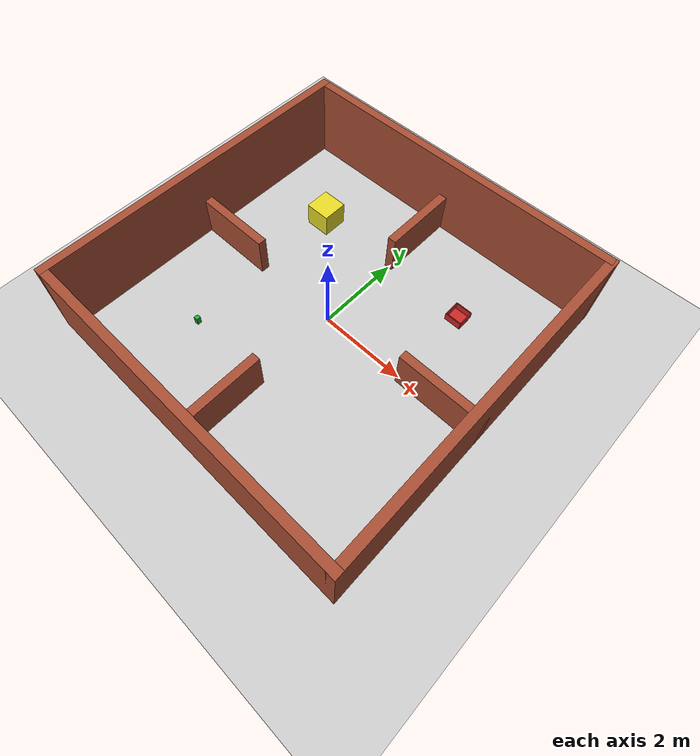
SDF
<sdf version="1.4">
  <world name="room_whd2">

    <!-- Global world -->
    <include>
      <uri>model://ground_plane</uri>
    </include>

    <!-- Global light source -->
    <include>
      <uri>model://sun</uri>
    </include>

    <physics type="ode">
      <real_time_update_rate>1000.0</real_time_update_rate>
      <max_step_size>0.001</max_step_size>
      <real_time_factor>1</real_time_factor>
      <ode>
        <solver>
          <type>quick</type>
          <iters>150</iters>
          <precon_iters>0</precon_iters>
          <sor>1.400000</sor>
          <use_dynamic_moi_rescaling>1</use_dynamic_moi_rescaling>
        </solver>
        <constraints>
          <cfm>0.00001</cfm>
          <erp>0.2</erp>
          <contact_max_correcting_vel>2000.000000</contact_max_correcting_vel>
          <contact_surface_layer>0.01000</contact_surface_layer>
        </constraints>
      </ode>
    </physics>

    <!-- Load world -->

    <include>
      <uri>model://room_whd2</uri>
    </include>

    <scene>
      <ambient>0.4 0.4 0.4 1</ambient>
      <background>0.7 0.7 0.7 1</background>
      <shadows>true</shadows>
    </scene>

    <gui fullscreen='0'>
      <camera name='user_camera'>
        <pose>0.8 2.0 12.0 0 1.5708 1.5708</pose>
        <view_controller>orbit</view_controller>
      </camera>
    </gui>
  </world>
</sdf>

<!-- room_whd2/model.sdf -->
<sdf version='1.6'>
  <model name='room_whd2'>
    <static>1</static>
    <pose frame=''>0 0 0 0 0 0</pose>
    <link name='Wall_0'>
      <collision name='Wall_0_Collision'>
        <geometry>
          <box>
            <size>8 0.2 2</size>
          </box>
        </geometry>
      </collision>
      <visual name='Wall_0_Visual'>
        <geometry>
          <box>
            <size>8 0.2 2</size>
          </box>
        </geometry>
        <material>
          <script>
            <uri>file://media/materials/scripts/gazebo.material</uri>
            <name>Gazebo/Bricks</name>
          </script>
          <ambient>1 1 1 1</ambient>
        </material>
      </visual>
      <pose frame=''>0 3.9 1 0 0 0</pose>
    </link>
    <link name='Wall_1'>
      <collision name='Wall_1_Collision'>
        <geometry>
          <box>
            <size>8 0.2 2</size>
          </box>
        </geometry>
      </collision>
      <visual name='Wall_1_Visual'>
        <geometry>
          <box>
            <size>8 0.2 2</size>
          </box>
        </geometry>
        <material>
          <script>
            <uri>file://media/materials/scripts/gazebo.material</uri>
            <name>Gazebo/Bricks</name>
          </script>
          <ambient>1 1 1 1</ambient>
        </material>
      </visual>
      <pose frame=''>-3.9 0 1 0 0 1.5708</pose>
    </link>
    <link name='Wall_2'>
      <collision name='Wall_2_Collision'>
        <geometry>
          <box>
            <size>8 0.2 2</size>
          </box>
        </geometry>
      </collision>
      <visual name='Wall_2_Visual'>
        <geometry>
          <box>
            <size>8 0.2 2</size>
          </box>
        </geometry>
        <material>
          <script>
            <uri>file://media/materials/scripts/gazebo.material</uri>
            <name>Gazebo/Bricks</name>
          </script>
          <ambient>1 1 1 1</ambient>
        </material>
      </visual>
      <pose frame=''>0 -3.9 1 0 0 0</pose>
    </link>
    <link name='Wall_3'>
      <collision name='Wall_3_Collision'>
        <geometry>
          <box>
            <size>8 0.2 2</size>
          </box>
        </geometry>
      </collision>
      <visual name='Wall_3_Visual'>
        <geometry>
          <box>
            <size>8 0.2 2</size>
          </box>
        </geometry>
        <material>
          <script>
            <uri>file://media/materials/scripts/gazebo.material</uri>
            <name>Gazebo/Bricks</name>
          </script>
          <ambient>1 1 1 1</ambient>
        </material>
      </visual>
      <pose frame=''>3.9 0 1 0 0 1.5708</pose>
    </link>

    <link name='Wall_4'>
      <collision name='Wall_4_Collision'>
        <geometry>
          <box>
            <size>2 0.2 1</size>
          </box>
        </geometry>
      </collision>
      <visual name='Wall_4_Visual'>
        <geometry>
          <box>
            <size>2 0.2 1</size>
          </box>
        </geometry>
        <material>
          <script>
            <uri>file://media/materials/scripts/gazebo.material</uri>
            <name>Gazebo/Bricks</name>
          </script>
          <ambient>1 1 1 1</ambient>
        </material>
      </visual>
      <pose frame=''>0 3 0.5 0 0 1.5708</pose>
    </link>

    <link name='Wall_5'>
      <collision name='Wall_5_Collision'>
        <geometry>
          <box>
            <size>2 0.2 1</size>
          </box>
        </geometry>
      </collision>
      <visual name='Wall_5_Visual'>
        <geometry>
          <box>
            <size>2 0.2 1</size>
          </box>
        </geometry>
        <material>
          <script>
            <uri>file://media/materials/scripts/gazebo.material</uri>
            <name>Gazebo/Bricks</name>
          </script>
          <ambient>1 1 1 1</ambient>
        </material>
      </visual>
      <pose frame=''>3 0 0.5 0 0 0</pose>
    </link>

    <link name='Wall_6'>
      <collision name='Wall_6_Collision'>
        <geometry>
          <box>
            <size>2 0.2 1</size>
          </box>
        </geometry>
      </collision>
      <visual name='Wall_6_Visual'>
        <geometry>
          <box>
            <size>2 0.2 1</size>
          </box>
        </geometry>
        <material>
          <script>
            <uri>file://media/materials/scripts/gazebo.material</uri>
            <name>Gazebo/Bricks</name>
          </script>
          <ambient>1 1 1 1</ambient>
        </material>
      </visual>
      <pose frame=''>0 -3 0.5 0 0 1.5708</pose>
    </link>

    <link name='Wall_7'>
      <collision name='Wall_7_Collision'>
        <geometry>
          <box>
            <size>2 0.2 1</size>
          </box>
        </geometry>
      </collision>
      <visual name='Wall_7_Visual'>
        <geometry>
          <box>
            <size>2 0.2 1</size>
          </box>
        </geometry>
        <material>
          <script>
            <uri>file://media/materials/scripts/gazebo.material</uri>
            <name>Gazebo/Bricks</name>
          </script>
          <ambient>1 1 1 1</ambient>
        </material>
      </visual>
      <pose frame=''>-3 0 0.5 0 0 0</pose>
    </link>

    <link name='Obstacle_1'>
      <collision name='Obstacle_1_Collision'>
        <pose>0 0 0.1 0 0 0</pose>
        <geometry>
          <box>
            <size>0.2 0.2 0.2</size>
          </box>
        </geometry>
        <max_contacts>10</max_contacts>
        <surface>
          <bounce/>
          <friction>
            <ode/>
          </friction>
          <contact>
            <ode/>
          </contact>
        </surface>
      </collision>
      <visual name='Obstacle_1_Visual'>
        <pose>0 0 0.1 0 0 0</pose>
        <geometry>
          <box>
            <size>0.1 0.1 0.2</size>
          </box>
        </geometry>
        <material>
          <script>
            <uri>file://media/materials/scripts/gazebo.material</uri>
            <name>Gazebo/Green</name>
          </script>
        </material>
      </visual>
      <pose frame=''>-2 -2 0 0 0 0</pose>
    </link>

    <link name='Obstacle_2'>
      <collision name='Obstacle_2_Collision'>
        <pose>0 0 0.3 0 0 0</pose>
        <geometry>
          <box>
            <size>0.6 0.6 0.6</size>
          </box>
        </geometry>
        <max_contacts>10</max_contacts>
        <surface>
          <bounce/>
          <friction>
            <ode/>
          </friction>
          <contact>
            <ode/>
          </contact>
        </surface>
      </collision>
      <visual name='Obstacle_2_Visual'>
        <pose>0 0 0.3 0 0 0</pose>
        <geometry>
          <box>
            <size>0.6 0.6 0.6</size>
          </box>
        </geometry>
        <material>
          <script>
            <uri>file://media/materials/scripts/gazebo.material</uri>
            <name>Gazebo/Yellow</name>
          </script>
        </material>
      </visual>
      <pose frame=''>-2 2 0 0 0 0</pose>
    </link>

    <model name='Box_target'>
      <static>1</static>
      <link name='box_bottom_plate'>
        <inertial>
          <pose frame=''>0 0 -1 0 -0 0</pose>
          <inertia>
            <ixx>2.05</ixx>
            <ixy>0</ixy>
            <ixz>0</ixz>
            <iyy>2.05</iyy>
            <iyz>0</iyz>
            <izz>2.05</izz>
          </inertia>
          <mass>25</mass>
        </inertial>
        <collision name='box_bottom_plate_geom'>
          <pose frame=''>0 0 0.01 0 -0 0</pose>
          <geometry>
            <box>
              <size>0.4 0.4 0.02</size>
            </box>
          </geometry>
        </collision>
        <visual name='box_bottom_plate_geom_visual'>
          <pose frame=''>0 0 0.01 0 -0 0</pose>
          <geometry>
            <box>
              <size>0.4 0.4 0.02</size>
            </box>
          </geometry>
          <material>
            <script>
              <uri>file://media/materials/scripts/gazebo.material</uri>
              <name>Gazebo/Red</name>
            </script>
          </material>
        </visual>
        <collision name='box_board_1_geom'>
          <pose frame=''>0 0.19 0.1 0 0 0</pose>
          <geometry>
            <box>
              <size>0.4 0.02 0.2</size>
            </box>
          </geometry>
        </collision>
        <visual name='cbox_board_1_visual'>
          <pose frame=''>0 0.19 0.1 0 0 0</pose>
          <geometry>
            <box>
              <size>0.4 0.02 0.2</size>
            </box>
          </geometry>
          <material>
            <script>
              <uri>file://media/materials/scripts/gazebo.material</uri>
              <name>Gazebo/Red</name>
            </script>
          </material>
        </visual>
        <collision name='box_board_2_geom'>
          <pose frame=''>-0.19 0 0.1 0 0 1.5708</pose>
          <geometry>
            <box>
              <size>0.4 0.02 0.2</size>
            </box>
          </geometry>
        </collision>
        <visual name='cbox_board_2_visual'>
          <pose frame=''>-0.19 0 0.1 0 0 1.5708</pose>
          <geometry>
            <box>
              <size>0.4 0.02 0.2</size>
            </box>
          </geometry>
          <material>
            <script>
              <uri>file://media/materials/scripts/gazebo.material</uri>
              <name>Gazebo/Red</name>
            </script>
          </material>
        </visual>
        <collision name='box_board_3_geom'>
          <pose frame=''>0 -0.19 0.1 0 0 0</pose>
          <geometry>
            <box>
              <size>0.4 0.02 0.2</size>
            </box>
          </geometry>
        </collision>
        <visual name='cbox_board_3_visual'>
          <pose frame=''>0 -0.19 0.1 0 0 0</pose>
          <geometry>
            <box>
              <size>0.4 0.02 0.2</size>
            </box>
          </geometry>
          <material>
            <script>
              <uri>file://media/materials/scripts/gazebo.material</uri>
              <name>Gazebo/Red</name>
            </script>
          </material>
        </visual>
        <collision name='box_board_4_geom'>
          <pose frame=''>0.19 0 0.1 0 0 1.5708</pose>
          <geometry>
            <box>
              <size>0.4 0.02 0.2</size>
            </box>
          </geometry>
        </collision>
        <visual name='cbox_board_4_visual'>
          <pose frame=''>0.19 0 0.1 0 0 1.5708</pose>
          <geometry>
            <box>
              <size>0.4 0.02 0.2</size>
            </box>
          </geometry>
          <material>
            <script>
              <uri>file://media/materials/scripts/gazebo.material</uri>
              <name>Gazebo/Red</name>
            </script>
          </material>
        </visual>
      </link>
      <pose frame=''>2 2 0 0 0 0</pose>
    </model>

    <static>1</static>
  </model>
</sdf>
